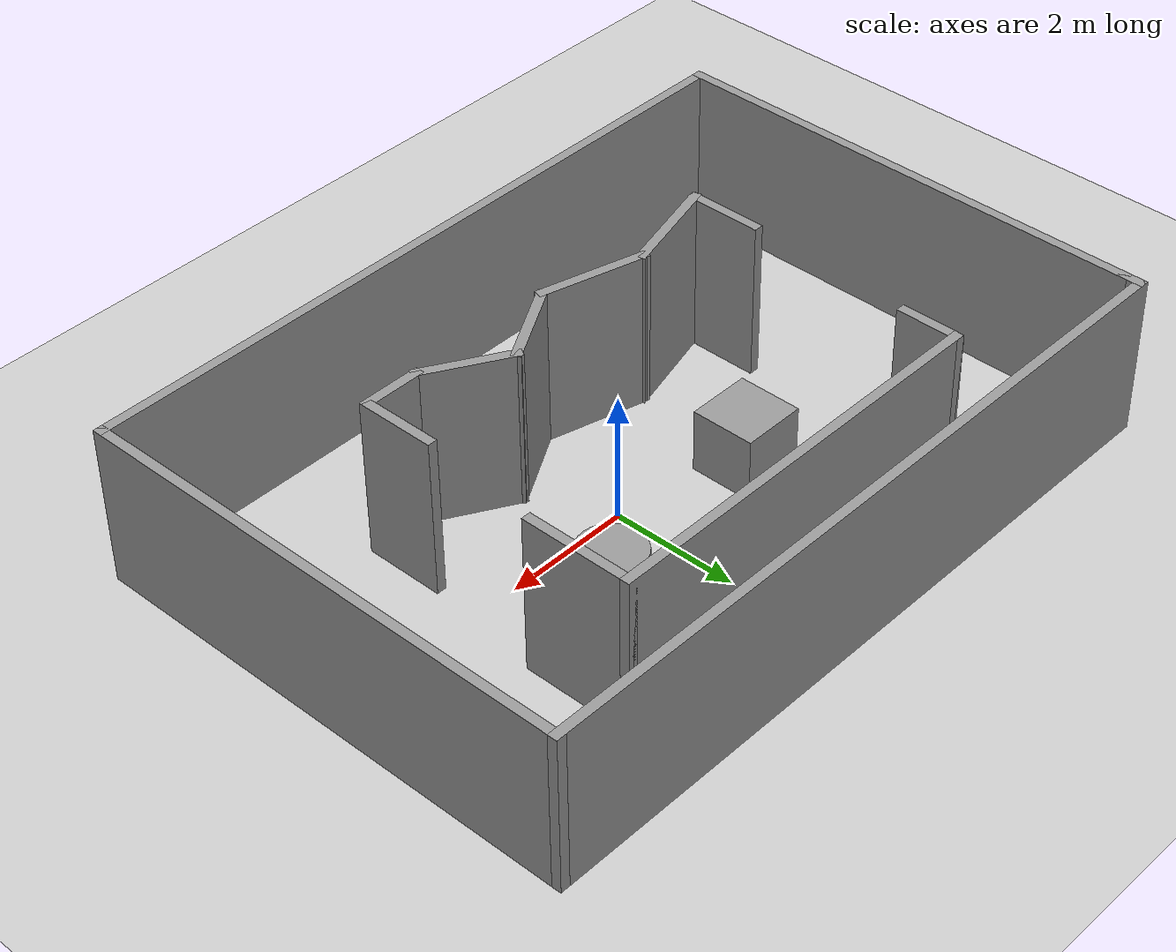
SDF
<sdf version="1.7">
 <world name="default">
  <light name="sun" type="directional">
   <pose>0 0 10 0 -0 0</pose>
   <diffuse>0.8 0.8 0.8 1</diffuse>
   <specular>0.2 0.2 0.2 1</specular>
   <attenuation>
    <range>1000</range>
    <constant>0.9</constant>
    <linear>0.01</linear>
    <quadratic>0.001</quadratic>
   </attenuation>
   <direction>-0.5 0.1 -0.9</direction>
   <spot><inner_angle>0</inner_angle><outer_angle>0</outer_angle><falloff>0</falloff></spot>
  </light>
  <model name="ground_plane">
   <static>1</static>
   <link name="link">
    <collision name="collision">
     <geometry><plane><normal>0 0 1</normal><size>100 100</size></plane></geometry>
     <surface><friction><ode><mu>100</mu><mu2>50</mu2></ode></friction></surface>
    </collision>
    <visual name="visual">
     <cast_shadows>0</cast_shadows>
     <geometry><plane><normal>0 0 1</normal><size>100 100</size></plane></geometry>
     <material>
      <script><uri>file://media/materials/scripts/gazebo.material</uri><name>Gazebo/Grey</name></script>
     </material>
    </visual>
   </link>
  </model>
  <gravity>0 0 -9.8</gravity>
  <magnetic_field>6e-06 2.3e-05 -4.2e-05</magnetic_field>
  <atmosphere type="adiabatic"/>
  <physics type="ode">
   <max_step_size>0.001</max_step_size>
   <real_time_factor>1</real_time_factor>
   <real_time_update_rate>1000</real_time_update_rate>
  </physics>
  <scene><ambient>0.4 0.4 0.4 1</ambient><background>0.7 0.7 0.7 1</background><shadows>1</shadows></scene>
  <spherical_coordinates>
   <surface_model>EARTH_WGS84</surface_model>
   <latitude_deg>0</latitude_deg>
   <longitude_deg>0</longitude_deg>
   <elevation>0</elevation>
   <heading_deg>0</heading_deg>
  </spherical_coordinates>
  <model name="model2">
   <link name="Wall_0">
    <pose>-5.675 -0.125 0 0 0 -1.5708</pose>
    <visual name="Wall_0_Visual">
     <pose>0 0 1.25 0 -0 0</pose>
     <geometry><box><size>7.75 0.15 2.5</size></box></geometry>
     <material>
      <script><uri>file://media/materials/scripts/gazebo.material</uri><name>Gazebo/Grey</name></script>
      <ambient>1 1 1 1</ambient>
      <shader type="pixel"/>
     </material>
     <meta><layer>0</layer></meta>
    </visual>
    <collision name="Wall_0_Collision">
     <pose>0 0 1.25 0 -0 0</pose>
     <geometry><box><size>7.75 0.15 2.5</size></box></geometry>
     <surface>
      <friction>
       <ode><mu>1</mu><mu2>1</mu2><fdir1>0 0 0</fdir1><slip1>0</slip1><slip2>0</slip2></ode>
       <torsional>
        <coefficient>1</coefficient>
        <patch_radius>0</patch_radius>
        <surface_radius>0</surface_radius>
        <use_patch_radius>1</use_patch_radius>
        <ode><slip>0</slip></ode>
       </torsional>
      </friction>
      <bounce><restitution_coefficient>0</restitution_coefficient><threshold>1e+06</threshold></bounce>
      <contact>
       <collide_without_contact>0</collide_without_contact>
       <collide_without_contact_bitmask>1</collide_without_contact_bitmask>
       <collide_bitmask>1</collide_bitmask>
       <ode>
        <soft_cfm>0</soft_cfm>
        <soft_erp>0.2</soft_erp>
        <kp>1e+13</kp>
        <kd>1</kd>
        <max_vel>0.01</max_vel>
        <min_depth>0</min_depth>
       </ode>
       <bullet>
        <split_impulse>1</split_impulse>
        <split_impulse_penetration_threshold>-0.01</split_impulse_penetration_threshold>
        <soft_cfm>0</soft_cfm>
        <soft_erp>0.2</soft_erp>
        <kp>1e+13</kp>
        <kd>1</kd>
       </bullet>
      </contact>
     </surface>
    </collision>
   </link>
   <link name="Wall_1">
    <pose>0 -3.925 0 0 -0 0</pose>
    <visual name="Wall_1_Visual">
     <pose>0 0 1.25 0 -0 0</pose>
     <geometry><box><size>11.5 0.15 2.5</size></box></geometry>
     <material>
      <script><uri>file://media/materials/scripts/gazebo.material</uri><name>Gazebo/Grey</name></script>
      <ambient>1 1 1 1</ambient>
      <shader type="pixel"/>
     </material>
     <meta><layer>0</layer></meta>
    </visual>
    <collision name="Wall_1_Collision">
     <pose>0 0 1.25 0 -0 0</pose>
     <geometry><box><size>11.5 0.15 2.5</size></box></geometry>
     <surface>
      <friction>
       <ode><mu>1</mu><mu2>1</mu2><fdir1>0 0 0</fdir1><slip1>0</slip1><slip2>0</slip2></ode>
       <torsional>
        <coefficient>1</coefficient>
        <patch_radius>0</patch_radius>
        <surface_radius>0</surface_radius>
        <use_patch_radius>1</use_patch_radius>
        <ode><slip>0</slip></ode>
       </torsional>
      </friction>
      <bounce><restitution_coefficient>0</restitution_coefficient><threshold>1e+06</threshold></bounce>
      <contact>
       <collide_without_contact>0</collide_without_contact>
       <collide_without_contact_bitmask>1</collide_without_contact_bitmask>
       <collide_bitmask>1</collide_bitmask>
       <ode>
        <soft_cfm>0</soft_cfm>
        <soft_erp>0.2</soft_erp>
        <kp>1e+13</kp>
        <kd>1</kd>
        <max_vel>0.01</max_vel>
        <min_depth>0</min_depth>
       </ode>
       <bullet>
        <split_impulse>1</split_impulse>
        <split_impulse_penetration_threshold>-0.01</split_impulse_penetration_threshold>
        <soft_cfm>0</soft_cfm>
        <soft_erp>0.2</soft_erp>
        <kp>1e+13</kp>
        <kd>1</kd>
       </bullet>
      </contact>
     </surface>
    </collision>
   </link>
   <link name="Wall_10">
    <pose>-3.21203 -1.31001 0 0 0 -1.5708</pose>
    <visual name="Wall_10_Visual">
     <pose>0 0 1.25 0 -0 0</pose>
     <geometry><box><size>1.25 0.15 2.5</size></box></geometry>
     <material>
      <script><uri>file://media/materials/scripts/gazebo.material</uri><name>Gazebo/Grey</name></script>
      <ambient>1 1 1 1</ambient>
      <shader type="pixel"/>
     </material>
     <meta><layer>0</layer></meta>
    </visual>
    <collision name="Wall_10_Collision">
     <pose>0 0 1.25 0 -0 0</pose>
     <geometry><box><size>1.25 0.15 2.5</size></box></geometry>
     <surface>
      <friction>
       <ode><mu>1</mu><mu2>1</mu2><fdir1>0 0 0</fdir1><slip1>0</slip1><slip2>0</slip2></ode>
       <torsional>
        <coefficient>1</coefficient>
        <patch_radius>0</patch_radius>
        <surface_radius>0</surface_radius>
        <use_patch_radius>1</use_patch_radius>
        <ode><slip>0</slip></ode>
       </torsional>
      </friction>
      <bounce><restitution_coefficient>0</restitution_coefficient><threshold>1e+06</threshold></bounce>
      <contact>
       <collide_without_contact>0</collide_without_contact>
       <collide_without_contact_bitmask>1</collide_without_contact_bitmask>
       <collide_bitmask>1</collide_bitmask>
       <ode>
        <soft_cfm>0</soft_cfm>
        <soft_erp>0.2</soft_erp>
        <kp>1e+13</kp>
        <kd>1</kd>
        <max_vel>0.01</max_vel>
        <min_depth>0</min_depth>
       </ode>
       <bullet>
        <split_impulse>1</split_impulse>
        <split_impulse_penetration_threshold>-0.01</split_impulse_penetration_threshold>
        <soft_cfm>0</soft_cfm>
        <soft_erp>0.2</soft_erp>
        <kp>1e+13</kp>
        <kd>1</kd>
       </bullet>
      </contact>
     </surface>
    </collision>
   </link>
   <link name="Wall_11">
    <pose>-2.43929 -1.65296 0 0 -0 0.261799</pose>
    <visual name="Wall_11_Visual">
     <pose>0 0 1.25 0 -0 0</pose>
     <geometry><box><size>1.75 0.15 2.5</size></box></geometry>
     <material>
      <script><uri>file://media/materials/scripts/gazebo.material</uri><name>Gazebo/Grey</name></script>
      <ambient>1 1 1 1</ambient>
      <shader type="pixel"/>
     </material>
     <meta><layer>0</layer></meta>
    </visual>
    <collision name="Wall_11_Collision">
     <pose>0 0 1.25 0 -0 0</pose>
     <geometry><box><size>1.75 0.15 2.5</size></box></geometry>
     <surface>
      <friction>
       <ode><mu>1</mu><mu2>1</mu2><fdir1>0 0 0</fdir1><slip1>0</slip1><slip2>0</slip2></ode>
       <torsional>
        <coefficient>1</coefficient>
        <patch_radius>0</patch_radius>
        <surface_radius>0</surface_radius>
        <use_patch_radius>1</use_patch_radius>
        <ode><slip>0</slip></ode>
       </torsional>
      </friction>
      <bounce><restitution_coefficient>0</restitution_coefficient><threshold>1e+06</threshold></bounce>
      <contact>
       <collide_without_contact>0</collide_without_contact>
       <collide_without_contact_bitmask>1</collide_without_contact_bitmask>
       <collide_bitmask>1</collide_bitmask>
       <ode>
        <soft_cfm>0</soft_cfm>
        <soft_erp>0.2</soft_erp>
        <kp>1e+13</kp>
        <kd>1</kd>
        <max_vel>0.01</max_vel>
        <min_depth>0</min_depth>
       </ode>
       <bullet>
        <split_impulse>1</split_impulse>
        <split_impulse_penetration_threshold>-0.01</split_impulse_penetration_threshold>
        <soft_cfm>0</soft_cfm>
        <soft_erp>0.2</soft_erp>
        <kp>1e+13</kp>
        <kd>1</kd>
       </bullet>
      </contact>
     </surface>
    </collision>
   </link>
   <link name="Wall_12">
    <pose>-0.893808 -1.65296 0 0 0 -0.261799</pose>
    <visual name="Wall_12_Visual">
     <pose>0 0 1.25 0 -0 0</pose>
     <geometry><box><size>1.75 0.15 2.5</size></box></geometry>
     <material>
      <script><uri>file://media/materials/scripts/gazebo.material</uri><name>Gazebo/Grey</name></script>
      <ambient>1 1 1 1</ambient>
      <shader type="pixel"/>
     </material>
     <meta><layer>0</layer></meta>
    </visual>
    <collision name="Wall_12_Collision">
     <pose>0 0 1.25 0 -0 0</pose>
     <geometry><box><size>1.75 0.15 2.5</size></box></geometry>
     <surface>
      <friction>
       <ode><mu>1</mu><mu2>1</mu2><fdir1>0 0 0</fdir1><slip1>0</slip1><slip2>0</slip2></ode>
       <torsional>
        <coefficient>1</coefficient>
        <patch_radius>0</patch_radius>
        <surface_radius>0</surface_radius>
        <use_patch_radius>1</use_patch_radius>
        <ode><slip>0</slip></ode>
       </torsional>
      </friction>
      <bounce><restitution_coefficient>0</restitution_coefficient><threshold>1e+06</threshold></bounce>
      <contact>
       <collide_without_contact>0</collide_without_contact>
       <collide_without_contact_bitmask>1</collide_without_contact_bitmask>
       <collide_bitmask>1</collide_bitmask>
       <ode>
        <soft_cfm>0</soft_cfm>
        <soft_erp>0.2</soft_erp>
        <kp>1e+13</kp>
        <kd>1</kd>
        <max_vel>0.01</max_vel>
        <min_depth>0</min_depth>
       </ode>
       <bullet>
        <split_impulse>1</split_impulse>
        <split_impulse_penetration_threshold>-0.01</split_impulse_penetration_threshold>
        <soft_cfm>0</soft_cfm>
        <soft_erp>0.2</soft_erp>
        <kp>1e+13</kp>
        <kd>1</kd>
       </bullet>
      </contact>
     </surface>
    </collision>
   </link>
   <link name="Wall_13">
    <pose>0.4635 -1.52251 0 0 -0 0.523599</pose>
    <visual name="Wall_13_Visual">
     <pose>0 0 1.25 0 -0 0</pose>
     <geometry><box><size>1.5 0.15 2.5</size></box></geometry>
     <material>
      <script><uri>file://media/materials/scripts/gazebo.material</uri><name>Gazebo/Grey</name></script>
      <ambient>1 1 1 1</ambient>
      <shader type="pixel"/>
     </material>
     <meta><layer>0</layer></meta>
    </visual>
    <collision name="Wall_13_Collision">
     <pose>0 0 1.25 0 -0 0</pose>
     <geometry><box><size>1.5 0.15 2.5</size></box></geometry>
     <surface>
      <friction>
       <ode><mu>1</mu><mu2>1</mu2><fdir1>0 0 0</fdir1><slip1>0</slip1><slip2>0</slip2></ode>
       <torsional>
        <coefficient>1</coefficient>
        <patch_radius>0</patch_radius>
        <surface_radius>0</surface_radius>
        <use_patch_radius>1</use_patch_radius>
        <ode><slip>0</slip></ode>
       </torsional>
      </friction>
      <bounce><restitution_coefficient>0</restitution_coefficient><threshold>1e+06</threshold></bounce>
      <contact>
       <collide_without_contact>0</collide_without_contact>
       <collide_without_contact_bitmask>1</collide_without_contact_bitmask>
       <collide_bitmask>1</collide_bitmask>
       <ode>
        <soft_cfm>0</soft_cfm>
        <soft_erp>0.2</soft_erp>
        <kp>1e+13</kp>
        <kd>1</kd>
        <max_vel>0.01</max_vel>
        <min_depth>0</min_depth>
       </ode>
       <bullet>
        <split_impulse>1</split_impulse>
        <split_impulse_penetration_threshold>-0.01</split_impulse_penetration_threshold>
        <soft_cfm>0</soft_cfm>
        <soft_erp>0.2</soft_erp>
        <kp>1e+13</kp>
        <kd>1</kd>
       </bullet>
      </contact>
     </surface>
    </collision>
   </link>
   <link name="Wall_14">
    <pose>1.63263 -1.52251 0 0 0 -0.523599</pose>
    <visual name="Wall_14_Visual">
     <pose>0 0 1.25 0 -0 0</pose>
     <geometry><box><size>1.5 0.15 2.5</size></box></geometry>
     <material>
      <script><uri>file://media/materials/scripts/gazebo.material</uri><name>Gazebo/Grey</name></script>
      <ambient>1 1 1 1</ambient>
      <shader type="pixel"/>
     </material>
     <meta><layer>0</layer></meta>
    </visual>
    <collision name="Wall_14_Collision">
     <pose>0 0 1.25 0 -0 0</pose>
     <geometry><box><size>1.5 0.15 2.5</size></box></geometry>
     <surface>
      <friction>
       <ode><mu>1</mu><mu2>1</mu2><fdir1>0 0 0</fdir1><slip1>0</slip1><slip2>0</slip2></ode>
       <torsional>
        <coefficient>1</coefficient>
        <patch_radius>0</patch_radius>
        <surface_radius>0</surface_radius>
        <use_patch_radius>1</use_patch_radius>
        <ode><slip>0</slip></ode>
       </torsional>
      </friction>
      <bounce><restitution_coefficient>0</restitution_coefficient><threshold>1e+06</threshold></bounce>
      <contact>
       <collide_without_contact>0</collide_without_contact>
       <collide_without_contact_bitmask>1</collide_without_contact_bitmask>
       <collide_bitmask>1</collide_bitmask>
       <ode>
        <soft_cfm>0</soft_cfm>
        <soft_erp>0.2</soft_erp>
        <kp>1e+13</kp>
        <kd>1</kd>
        <max_vel>0.01</max_vel>
        <min_depth>0</min_depth>
       </ode>
       <bullet>
        <split_impulse>1</split_impulse>
        <split_impulse_penetration_threshold>-0.01</split_impulse_penetration_threshold>
        <soft_cfm>0</soft_cfm>
        <soft_erp>0.2</soft_erp>
        <kp>1e+13</kp>
        <kd>1</kd>
       </bullet>
      </contact>
     </surface>
    </collision>
   </link>
   <link name="Wall_15">
    <pose>2.6422 -1.86001 0 0 -0 0</pose>
    <visual name="Wall_15_Visual">
     <pose>0 0 1.25 0 -0 0</pose>
     <geometry><box><size>1 0.15 2.5</size></box></geometry>
     <material>
      <script><uri>file://media/materials/scripts/gazebo.material</uri><name>Gazebo/Grey</name></script>
      <ambient>1 1 1 1</ambient>
      <shader type="pixel"/>
     </material>
     <meta><layer>0</layer></meta>
    </visual>
    <collision name="Wall_15_Collision">
     <pose>0 0 1.25 0 -0 0</pose>
     <geometry><box><size>1 0.15 2.5</size></box></geometry>
     <surface>
      <friction>
       <ode><mu>1</mu><mu2>1</mu2><fdir1>0 0 0</fdir1><slip1>0</slip1><slip2>0</slip2></ode>
       <torsional>
        <coefficient>1</coefficient>
        <patch_radius>0</patch_radius>
        <surface_radius>0</surface_radius>
        <use_patch_radius>1</use_patch_radius>
        <ode><slip>0</slip></ode>
       </torsional>
      </friction>
      <bounce><restitution_coefficient>0</restitution_coefficient><threshold>1e+06</threshold></bounce>
      <contact>
       <collide_without_contact>0</collide_without_contact>
       <collide_without_contact_bitmask>1</collide_without_contact_bitmask>
       <collide_bitmask>1</collide_bitmask>
       <ode>
        <soft_cfm>0</soft_cfm>
        <soft_erp>0.2</soft_erp>
        <kp>1e+13</kp>
        <kd>1</kd>
        <max_vel>0.01</max_vel>
        <min_depth>0</min_depth>
       </ode>
       <bullet>
        <split_impulse>1</split_impulse>
        <split_impulse_penetration_threshold>-0.01</split_impulse_penetration_threshold>
        <soft_cfm>0</soft_cfm>
        <soft_erp>0.2</soft_erp>
        <kp>1e+13</kp>
        <kd>1</kd>
       </bullet>
      </contact>
     </surface>
    </collision>
   </link>
   <link name="Wall_16">
    <pose>3.0672 -1.31001 0 0 -0 1.5708</pose>
    <visual name="Wall_16_Visual">
     <pose>0 0 1.25 0 -0 0</pose>
     <geometry><box><size>1.25 0.15 2.5</size></box></geometry>
     <material>
      <script><uri>file://media/materials/scripts/gazebo.material</uri><name>Gazebo/Grey</name></script>
      <ambient>1 1 1 1</ambient>
      <shader type="pixel"/>
     </material>
     <meta><layer>0</layer></meta>
    </visual>
    <collision name="Wall_16_Collision">
     <pose>0 0 1.25 0 -0 0</pose>
     <geometry><box><size>1.25 0.15 2.5</size></box></geometry>
     <surface>
      <friction>
       <ode><mu>1</mu><mu2>1</mu2><fdir1>0 0 0</fdir1><slip1>0</slip1><slip2>0</slip2></ode>
       <torsional>
        <coefficient>1</coefficient>
        <patch_radius>0</patch_radius>
        <surface_radius>0</surface_radius>
        <use_patch_radius>1</use_patch_radius>
        <ode><slip>0</slip></ode>
       </torsional>
      </friction>
      <bounce><restitution_coefficient>0</restitution_coefficient><threshold>1e+06</threshold></bounce>
      <contact>
       <collide_without_contact>0</collide_without_contact>
       <collide_without_contact_bitmask>1</collide_without_contact_bitmask>
       <collide_bitmask>1</collide_bitmask>
       <ode>
        <soft_cfm>0</soft_cfm>
        <soft_erp>0.2</soft_erp>
        <kp>1e+13</kp>
        <kd>1</kd>
        <max_vel>0.01</max_vel>
        <min_depth>0</min_depth>
       </ode>
       <bullet>
        <split_impulse>1</split_impulse>
        <split_impulse_penetration_threshold>-0.01</split_impulse_penetration_threshold>
        <soft_cfm>0</soft_cfm>
        <soft_erp>0.2</soft_erp>
        <kp>1e+13</kp>
        <kd>1</kd>
       </bullet>
      </contact>
     </surface>
    </collision>
   </link>
   <link name="Wall_2">
    <pose>5.675 0 0 0 -0 1.5708</pose>
    <visual name="Wall_2_Visual">
     <pose>0 0 1.25 0 -0 0</pose>
     <geometry><box><size>8 0.15 2.5</size></box></geometry>
     <material>
      <script><uri>file://media/materials/scripts/gazebo.material</uri><name>Gazebo/Grey</name></script>
      <ambient>1 1 1 1</ambient>
      <shader type="pixel"/>
     </material>
     <meta><layer>0</layer></meta>
    </visual>
    <collision name="Wall_2_Collision">
     <pose>0 0 1.25 0 -0 0</pose>
     <geometry><box><size>8 0.15 2.5</size></box></geometry>
     <surface>
      <friction>
       <ode><mu>1</mu><mu2>1</mu2><fdir1>0 0 0</fdir1><slip1>0</slip1><slip2>0</slip2></ode>
       <torsional>
        <coefficient>1</coefficient>
        <patch_radius>0</patch_radius>
        <surface_radius>0</surface_radius>
        <use_patch_radius>1</use_patch_radius>
        <ode><slip>0</slip></ode>
       </torsional>
      </friction>
      <bounce><restitution_coefficient>0</restitution_coefficient><threshold>1e+06</threshold></bounce>
      <contact>
       <collide_without_contact>0</collide_without_contact>
       <collide_without_contact_bitmask>1</collide_without_contact_bitmask>
       <collide_bitmask>1</collide_bitmask>
       <ode>
        <soft_cfm>0</soft_cfm>
        <soft_erp>0.2</soft_erp>
        <kp>1e+13</kp>
        <kd>1</kd>
        <max_vel>0.01</max_vel>
        <min_depth>0</min_depth>
       </ode>
       <bullet>
        <split_impulse>1</split_impulse>
        <split_impulse_penetration_threshold>-0.01</split_impulse_penetration_threshold>
        <soft_cfm>0</soft_cfm>
        <soft_erp>0.2</soft_erp>
        <kp>1e+13</kp>
        <kd>1</kd>
       </bullet>
      </contact>
     </surface>
    </collision>
   </link>
   <link name="Wall_3">
    <pose>0 3.925 0 0 -0 3.14159</pose>
    <visual name="Wall_3_Visual">
     <pose>0 0 1.25 0 -0 0</pose>
     <geometry><box><size>11.5 0.15 2.5</size></box></geometry>
     <material>
      <script><uri>file://media/materials/scripts/gazebo.material</uri><name>Gazebo/Grey</name></script>
      <ambient>1 1 1 1</ambient>
      <shader type="pixel"/>
     </material>
     <meta><layer>0</layer></meta>
    </visual>
    <collision name="Wall_3_Collision">
     <pose>0 0 1.25 0 -0 0</pose>
     <geometry><box><size>11.5 0.15 2.5</size></box></geometry>
     <surface>
      <friction>
       <ode><mu>1</mu><mu2>1</mu2><fdir1>0 0 0</fdir1><slip1>0</slip1><slip2>0</slip2></ode>
       <torsional>
        <coefficient>1</coefficient>
        <patch_radius>0</patch_radius>
        <surface_radius>0</surface_radius>
        <use_patch_radius>1</use_patch_radius>
        <ode><slip>0</slip></ode>
       </torsional>
      </friction>
      <bounce><restitution_coefficient>0</restitution_coefficient><threshold>1e+06</threshold></bounce>
      <contact>
       <collide_without_contact>0</collide_without_contact>
       <collide_without_contact_bitmask>1</collide_without_contact_bitmask>
       <collide_bitmask>1</collide_bitmask>
       <ode>
        <soft_cfm>0</soft_cfm>
        <soft_erp>0.2</soft_erp>
        <kp>1e+13</kp>
        <kd>1</kd>
        <max_vel>0.01</max_vel>
        <min_depth>0</min_depth>
       </ode>
       <bullet>
        <split_impulse>1</split_impulse>
        <split_impulse_penetration_threshold>-0.01</split_impulse_penetration_threshold>
        <soft_cfm>0</soft_cfm>
        <soft_erp>0.2</soft_erp>
        <kp>1e+13</kp>
        <kd>1</kd>
       </bullet>
      </contact>
     </surface>
    </collision>
   </link>
   <link name="Wall_4">
    <pose>-5.675 3.8 0 0 0 -1.5708</pose>
    <visual name="Wall_4_Visual">
     <pose>0 0 1.25 0 -0 0</pose>
     <geometry><box><size>0.4 0.15 2.5</size></box></geometry>
     <material>
      <script><uri>file://media/materials/scripts/gazebo.material</uri><name>Gazebo/Grey</name></script>
      <ambient>1 1 1 1</ambient>
      <shader type="pixel"/>
     </material>
     <meta><layer>0</layer></meta>
    </visual>
    <collision name="Wall_4_Collision">
     <pose>0 0 1.25 0 -0 0</pose>
     <geometry><box><size>0.4 0.15 2.5</size></box></geometry>
     <surface>
      <friction>
       <ode><mu>1</mu><mu2>1</mu2><fdir1>0 0 0</fdir1><slip1>0</slip1><slip2>0</slip2></ode>
       <torsional>
        <coefficient>1</coefficient>
        <patch_radius>0</patch_radius>
        <surface_radius>0</surface_radius>
        <use_patch_radius>1</use_patch_radius>
        <ode><slip>0</slip></ode>
       </torsional>
      </friction>
      <bounce><restitution_coefficient>0</restitution_coefficient><threshold>1e+06</threshold></bounce>
      <contact>
       <collide_without_contact>0</collide_without_contact>
       <collide_without_contact_bitmask>1</collide_without_contact_bitmask>
       <collide_bitmask>1</collide_bitmask>
       <ode>
        <soft_cfm>0</soft_cfm>
        <soft_erp>0.2</soft_erp>
        <kp>1e+13</kp>
        <kd>1</kd>
        <max_vel>0.01</max_vel>
        <min_depth>0</min_depth>
       </ode>
       <bullet>
        <split_impulse>1</split_impulse>
        <split_impulse_penetration_threshold>-0.01</split_impulse_penetration_threshold>
        <soft_cfm>0</soft_cfm>
        <soft_erp>0.2</soft_erp>
        <kp>1e+13</kp>
        <kd>1</kd>
       </bullet>
      </contact>
     </surface>
    </collision>
   </link>
   <link name="Wall_6">
    <pose>-3.07124 2.38032 0 0 -0 1.5708</pose>
    <visual name="Wall_6_Visual">
     <pose>0 0 1.25 0 -0 0</pose>
     <geometry><box><size>1 0.15 2.5</size></box></geometry>
     <material>
      <script><uri>file://media/materials/scripts/gazebo.material</uri><name>Gazebo/Grey</name></script>
      <ambient>1 1 1 1</ambient>
      <shader type="pixel"/>
     </material>
     <meta><layer>0</layer></meta>
    </visual>
    <collision name="Wall_6_Collision">
     <pose>0 0 1.25 0 -0 0</pose>
     <geometry><box><size>1 0.15 2.5</size></box></geometry>
     <surface>
      <friction>
       <ode><mu>1</mu><mu2>1</mu2><fdir1>0 0 0</fdir1><slip1>0</slip1><slip2>0</slip2></ode>
       <torsional>
        <coefficient>1</coefficient>
        <patch_radius>0</patch_radius>
        <surface_radius>0</surface_radius>
        <use_patch_radius>1</use_patch_radius>
        <ode><slip>0</slip></ode>
       </torsional>
      </friction>
      <bounce><restitution_coefficient>0</restitution_coefficient><threshold>1e+06</threshold></bounce>
      <contact>
       <collide_without_contact>0</collide_without_contact>
       <collide_without_contact_bitmask>1</collide_without_contact_bitmask>
       <collide_bitmask>1</collide_bitmask>
       <ode>
        <soft_cfm>0</soft_cfm>
        <soft_erp>0.2</soft_erp>
        <kp>1e+13</kp>
        <kd>1</kd>
        <max_vel>0.01</max_vel>
        <min_depth>0</min_depth>
       </ode>
       <bullet>
        <split_impulse>1</split_impulse>
        <split_impulse_penetration_threshold>-0.01</split_impulse_penetration_threshold>
        <soft_cfm>0</soft_cfm>
        <soft_erp>0.2</soft_erp>
        <kp>1e+13</kp>
        <kd>1</kd>
       </bullet>
      </contact>
     </surface>
    </collision>
   </link>
   <link name="Wall_7">
    <pose>0.103765 2.80532 0 0 -0 0</pose>
    <visual name="Wall_7_Visual">
     <pose>0 0 1.25 0 -0 0</pose>
     <geometry><box><size>6.5 0.15 2.5</size></box></geometry>
     <material>
      <script><uri>file://media/materials/scripts/gazebo.material</uri><name>Gazebo/Grey</name></script>
      <ambient>1 1 1 1</ambient>
      <shader type="pixel"/>
     </material>
     <meta><layer>0</layer></meta>
    </visual>
    <collision name="Wall_7_Collision">
     <pose>0 0 1.25 0 -0 0</pose>
     <geometry><box><size>6.5 0.15 2.5</size></box></geometry>
     <surface>
      <friction>
       <ode><mu>1</mu><mu2>1</mu2><fdir1>0 0 0</fdir1><slip1>0</slip1><slip2>0</slip2></ode>
       <torsional>
        <coefficient>1</coefficient>
        <patch_radius>0</patch_radius>
        <surface_radius>0</surface_radius>
        <use_patch_radius>1</use_patch_radius>
        <ode><slip>0</slip></ode>
       </torsional>
      </friction>
      <bounce><restitution_coefficient>0</restitution_coefficient><threshold>1e+06</threshold></bounce>
      <contact>
       <collide_without_contact>0</collide_without_contact>
       <collide_without_contact_bitmask>1</collide_without_contact_bitmask>
       <collide_bitmask>1</collide_bitmask>
       <ode>
        <soft_cfm>0</soft_cfm>
        <soft_erp>0.2</soft_erp>
        <kp>1e+13</kp>
        <kd>1</kd>
        <max_vel>0.01</max_vel>
        <min_depth>0</min_depth>
       </ode>
       <bullet>
        <split_impulse>1</split_impulse>
        <split_impulse_penetration_threshold>-0.01</split_impulse_penetration_threshold>
        <soft_cfm>0</soft_cfm>
        <soft_erp>0.2</soft_erp>
        <kp>1e+13</kp>
        <kd>1</kd>
       </bullet>
      </contact>
     </surface>
    </collision>
   </link>
   <link name="Wall_8">
    <pose>3.27876 2.00532 0 0 0 -1.5708</pose>
    <visual name="Wall_8_Visual">
     <pose>0 0 1.25 0 -0 0</pose>
     <geometry><box><size>1.75 0.15 2.5</size></box></geometry>
     <material>
      <script><uri>file://media/materials/scripts/gazebo.material</uri><name>Gazebo/Grey</name></script>
      <ambient>1 1 1 1</ambient>
      <shader type="pixel"/>
     </material>
     <meta><layer>0</layer></meta>
    </visual>
    <collision name="Wall_8_Collision">
     <pose>0 0 1.25 0 -0 0</pose>
     <geometry><box><size>1.75 0.15 2.5</size></box></geometry>
     <surface>
      <friction>
       <ode><mu>1</mu><mu2>1</mu2><fdir1>0 0 0</fdir1><slip1>0</slip1><slip2>0</slip2></ode>
       <torsional>
        <coefficient>1</coefficient>
        <patch_radius>0</patch_radius>
        <surface_radius>0</surface_radius>
        <use_patch_radius>1</use_patch_radius>
        <ode><slip>0</slip></ode>
       </torsional>
      </friction>
      <bounce><restitution_coefficient>0</restitution_coefficient><threshold>1e+06</threshold></bounce>
      <contact>
       <collide_without_contact>0</collide_without_contact>
       <collide_without_contact_bitmask>1</collide_without_contact_bitmask>
       <collide_bitmask>1</collide_bitmask>
       <ode>
        <soft_cfm>0</soft_cfm>
        <soft_erp>0.2</soft_erp>
        <kp>1e+13</kp>
        <kd>1</kd>
        <max_vel>0.01</max_vel>
        <min_depth>0</min_depth>
       </ode>
       <bullet>
        <split_impulse>1</split_impulse>
        <split_impulse_penetration_threshold>-0.01</split_impulse_penetration_threshold>
        <soft_cfm>0</soft_cfm>
        <soft_erp>0.2</soft_erp>
        <kp>1e+13</kp>
        <kd>1</kd>
       </bullet>
      </contact>
     </surface>
    </collision>
   </link>
   <link name="link_0">
    <inertial>
     <mass>1</mass>
     <inertia>
      <ixx>0.166667</ixx>
      <ixy>0</ixy>
      <ixz>0</ixz>
      <iyy>0.166667</iyy>
      <iyz>0</iyz>
      <izz>0.166667</izz>
     </inertia>
    </inertial>
    <pose>-1.48989 0.603993 0.5 0 -0 0</pose>
    <visual name="visual">
     <geometry><box><size>1 1 1</size></box></geometry>
     <material>
      <lighting>1</lighting>
      <script><uri>file://media/materials/scripts/gazebo.material</uri><name>Gazebo/Grey</name></script>
      <shader type="pixel"/>
     </material>
    </visual>
    <collision name="collision">
     <geometry><box><size>1 1 1</size></box></geometry>
     <surface>
      <friction>
       <ode><mu>1</mu><mu2>1</mu2><fdir1>0 0 0</fdir1><slip1>0</slip1><slip2>0</slip2></ode>
       <torsional>
        <coefficient>1</coefficient>
        <patch_radius>0</patch_radius>
        <surface_radius>0</surface_radius>
        <use_patch_radius>1</use_patch_radius>
        <ode><slip>0</slip></ode>
       </torsional>
      </friction>
      <bounce><restitution_coefficient>0</restitution_coefficient><threshold>1e+06</threshold></bounce>
      <contact>
       <collide_without_contact>0</collide_without_contact>
       <collide_without_contact_bitmask>1</collide_without_contact_bitmask>
       <collide_bitmask>1</collide_bitmask>
       <ode>
        <soft_cfm>0</soft_cfm>
        <soft_erp>0.2</soft_erp>
        <kp>1e+13</kp>
        <kd>1</kd>
        <max_vel>0.01</max_vel>
        <min_depth>0</min_depth>
       </ode>
       <bullet>
        <split_impulse>1</split_impulse>
        <split_impulse_penetration_threshold>-0.01</split_impulse_penetration_threshold>
        <soft_cfm>0</soft_cfm>
        <soft_erp>0.2</soft_erp>
        <kp>1e+13</kp>
        <kd>1</kd>
       </bullet>
      </contact>
     </surface>
    </collision>
   </link>
   <link name="link_1">
    <inertial>
     <mass>1</mass>
     <inertia><ixx>0.145833</ixx><ixy>0</ixy><ixz>0</ixz><iyy>0.145833</iyy><iyz>0</iyz><izz>0.125</izz></inertia>
    </inertial>
    <pose>1.79669 1.15996 0.5 0 -0 0</pose>
    <visual name="visual">
     <geometry><cylinder><radius>0.5</radius><length>1</length></cylinder></geometry>
     <material>
      <lighting>1</lighting>
      <script><uri>file://media/materials/scripts/gazebo.material</uri><name>Gazebo/Grey</name></script>
      <shader type="pixel"/>
     </material>
    </visual>
    <collision name="collision">
     <geometry><cylinder><radius>0.5</radius><length>1</length></cylinder></geometry>
     <surface>
      <friction>
       <ode><mu>1</mu><mu2>1</mu2><fdir1>0 0 0</fdir1><slip1>0</slip1><slip2>0</slip2></ode>
       <torsional>
        <coefficient>1</coefficient>
        <patch_radius>0</patch_radius>
        <surface_radius>0</surface_radius>
        <use_patch_radius>1</use_patch_radius>
        <ode><slip>0</slip></ode>
       </torsional>
      </friction>
      <bounce><restitution_coefficient>0</restitution_coefficient><threshold>1e+06</threshold></bounce>
      <contact>
       <collide_without_contact>0</collide_without_contact>
       <collide_without_contact_bitmask>1</collide_without_contact_bitmask>
       <collide_bitmask>1</collide_bitmask>
       <ode>
        <soft_cfm>0</soft_cfm>
        <soft_erp>0.2</soft_erp>
        <kp>1e+13</kp>
        <kd>1</kd>
        <max_vel>0.01</max_vel>
        <min_depth>0</min_depth>
       </ode>
       <bullet>
        <split_impulse>1</split_impulse>
        <split_impulse_penetration_threshold>-0.01</split_impulse_penetration_threshold>
        <soft_cfm>0</soft_cfm>
        <soft_erp>0.2</soft_erp>
        <kp>1e+13</kp>
        <kd>1</kd>
       </bullet>
      </contact>
     </surface>
    </collision>
   </link>
   <static>1</static>
   <pose>-0.421441 -0.010583 0 0 -0 0</pose>
  </model>
 </world>
</sdf>
